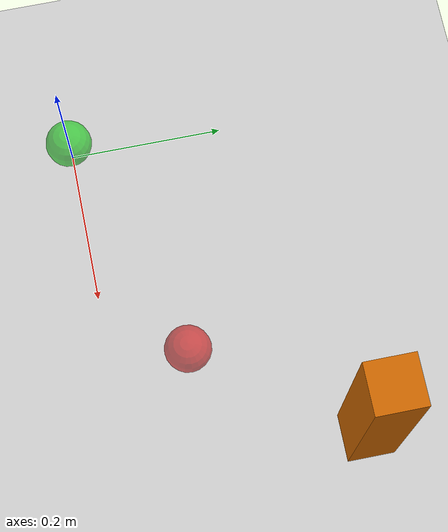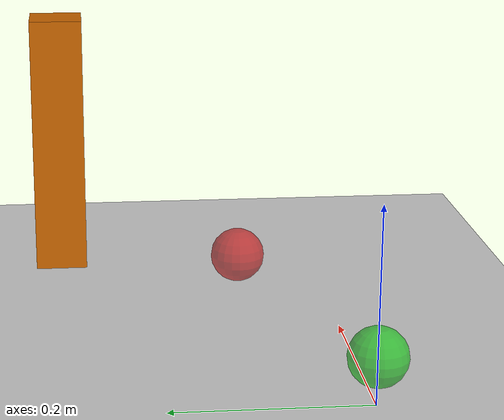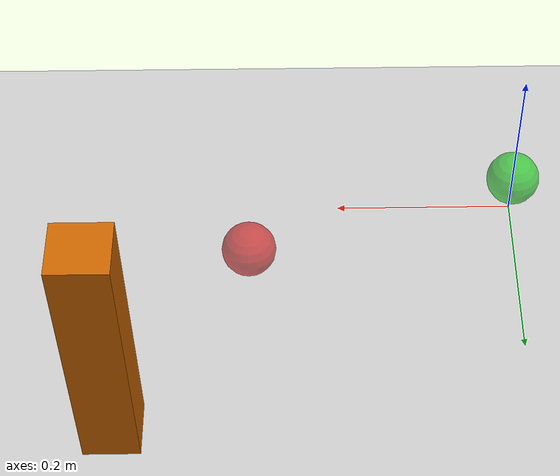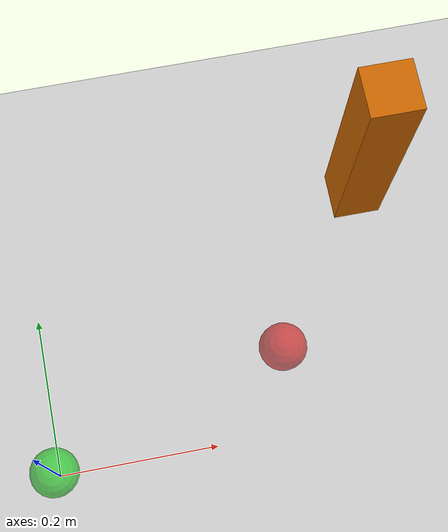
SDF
<?xml version="1.0" ?>
<sdf version="1.7">
  <world name="arco_scenario">

    <gravity>0 0 -9.81</gravity>

    <physics name="default_physics" default="true" type="ode">
      <max_step_size>0.001</max_step_size>
      <real_time_factor>1</real_time_factor>
      <real_time_update_rate>1000</real_time_update_rate>
    </physics>

    <light name="sun" type="directional">
      <cast_shadows>true</cast_shadows>
      <pose>0 0 10 0 0 0</pose>
      <diffuse>0.8 0.8 0.8 1</diffuse>
      <specular>0.2 0.2 0.2 1</specular>
      <attenuation>
        <range>1000</range>
        <constant>0.9</constant>
        <linear>0.01</linear>
        <quadratic>0.001</quadratic>
      </attenuation>
      <direction>-0.5 0.1 -0.9</direction>
    </light>

    <model name="ground_plane">
      <static>true</static>
      <link name="link">
        <collision name="collision">
          <geometry>
            <plane>
              <normal>0 0 1</normal>
              <size>100 100</size>
            </plane>
          </geometry>
        </collision>
        <visual name="visual">
          <geometry>
            <plane>
              <normal>0 0 1</normal>
              <size>100 100</size>
            </plane>
          </geometry>
          <material>
            <ambient>0.8 0.8 0.8 1</ambient>
            <diffuse>0.8 0.8 0.8 1</diffuse>
            <specular>0.8 0.8 0.8 1</specular>
          </material>
        </visual>
      </link>
    </model>

    <!-- Obstacle: 6×6×30 cm column at (0.44, 0.30, 0.15) — farthest from origin -->
    <model name="obstacle_box_a">
      <static>true</static>
      <pose>0.44 0.30 0.15 0 0 0</pose>
      <link name="link">
        <collision name="collision">
          <geometry>
            <box>
              <size>0.06 0.06 0.30</size>
            </box>
          </geometry>
        </collision>
        <visual name="visual">
          <geometry>
            <box>
              <size>0.06 0.06 0.30</size>
            </box>
          </geometry>
          <material>
            <ambient>0.8 0.4 0.0 1</ambient>
            <diffuse>0.8 0.4 0.0 1</diffuse>
          </material>
        </visual>
      </link>
    </model>

    <!-- Start region: green visual-only sphere at (0.0, 0.0, 0.05) r=0.03 m -->
    <model name="region_start">
      <static>true</static>
      <pose>0.0 0.0 0.05 0 0 0</pose>
      <link name="link">
        <visual name="visual">
          <geometry>
            <sphere>
              <radius>0.03</radius>
            </sphere>
          </geometry>
          <material>
            <ambient>0.0 0.8 0.0 0.6</ambient>
            <diffuse>0.0 0.8 0.0 0.6</diffuse>
          </material>
          <transparency>0.4</transparency>
        </visual>
      </link>
    </model>

    <!-- Target region: red visual-only sphere at (0.30, 0.10, 0.05) r=0.03 m -->
    <model name="region_target">
      <static>true</static>
      <pose>0.30 0.10 0.05 0 0 0</pose>
      <link name="link">
        <visual name="visual">
          <geometry>
            <sphere>
              <radius>0.03</radius>
            </sphere>
          </geometry>
          <material>
            <ambient>0.8 0.0 0.0 0.6</ambient>
            <diffuse>0.8 0.0 0.0 0.6</diffuse>
          </material>
          <transparency>0.4</transparency>
        </visual>
      </link>
    </model>

  </world>
</sdf>
